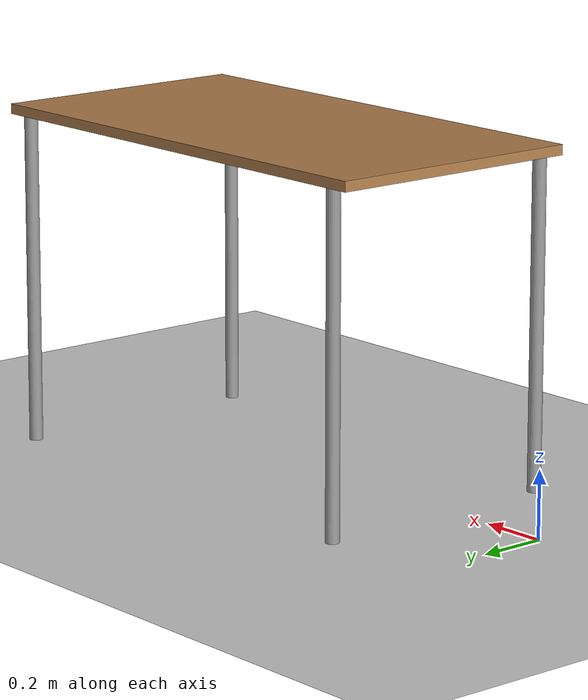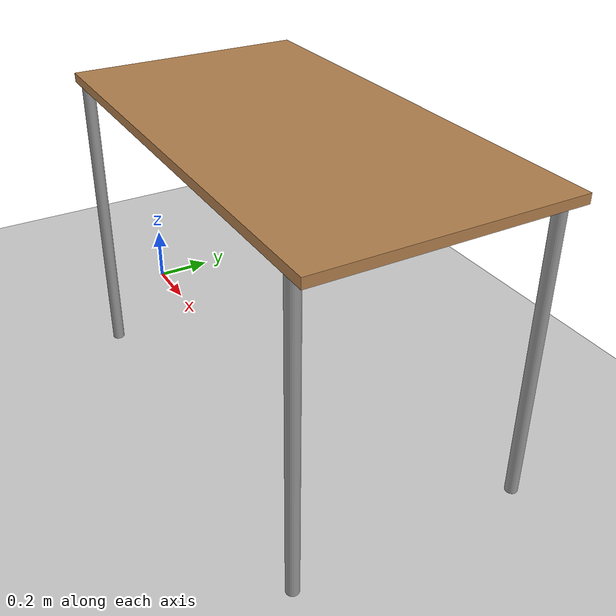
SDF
<sdf version="1.7">
 <world name="default">
  <plugin name="gazebo_ros_paths" filename="libgazebo_ros_paths_plugin.so"/>
  <light name="sun" type="directional">
   <pose>0 0 10 0 0 0</pose>
   <diffuse>0.8 0.8 0.8 1</diffuse>
   <specular>0.2 0.2 0.2 1</specular>
   <direction>-0.5 0.1 -0.9</direction>
  </light>
  <gravity>0 0 0</gravity>
  <physics type="ode">
   <max_step_size>0.001</max_step_size>
   <real_time_factor>1</real_time_factor>
   <real_time_update_rate>1000</real_time_update_rate>
  </physics>
  <include><uri>model://ground_plane</uri></include>
  <model name="table">
   <static>1</static>
   <link name="link">
    <collision name="surface_collision">
     <pose>0 0 1 0 0 0</pose>
     <geometry><box><size>1.5 0.8 0.03</size></box></geometry>
    </collision>
    <visual name="surface_visual">
     <pose>0 0 1 0 0 0</pose>
     <geometry><box><size>1.5 0.8 0.03</size></box></geometry>
     <material>
      <script><uri>file://media/materials/scripts/gazebo.material</uri><name>Gazebo/Wood</name></script>
     </material>
    </visual>
    <collision name="front_left_leg_collision">
     <pose>0.68 0.38 0.5 0 0 0</pose>
     <geometry><cylinder><radius>0.02</radius><length>1</length></cylinder></geometry>
    </collision>
    <visual name="front_left_leg_visual">
     <pose>0.68 0.38 0.5 0 0 0</pose>
     <geometry><cylinder><radius>0.02</radius><length>1</length></cylinder></geometry>
     <material>
      <script><uri>file://media/materials/scripts/gazebo.material</uri><name>Gazebo/Grey</name></script>
     </material>
    </visual>
    <collision name="front_right_leg_collision">
     <pose>0.68 -0.38 0.5 0 0 0</pose>
     <geometry><cylinder><radius>0.02</radius><length>1</length></cylinder></geometry>
    </collision>
    <visual name="front_right_leg_visual">
     <pose>0.68 -0.38 0.5 0 0 0</pose>
     <geometry><cylinder><radius>0.02</radius><length>1</length></cylinder></geometry>
     <material>
      <script><uri>file://media/materials/scripts/gazebo.material</uri><name>Gazebo/Grey</name></script>
     </material>
    </visual>
    <collision name="back_right_leg_collision">
     <pose>-0.68 -0.38 0.5 0 0 0</pose>
     <geometry><cylinder><radius>0.02</radius><length>1</length></cylinder></geometry>
    </collision>
    <visual name="back_right_leg_visual">
     <pose>-0.68 -0.38 0.5 0 0 0</pose>
     <geometry><cylinder><radius>0.02</radius><length>1</length></cylinder></geometry>
     <material>
      <script><uri>file://media/materials/scripts/gazebo.material</uri><name>Gazebo/Grey</name></script>
     </material>
    </visual>
    <collision name="back_left_leg_collision">
     <pose>-0.68 0.38 0.5 0 0 0</pose>
     <geometry><cylinder><radius>0.02</radius><length>1</length></cylinder></geometry>
    </collision>
    <visual name="back_left_leg_visual">
     <pose>-0.68 0.38 0.5 0 0 0</pose>
     <geometry><cylinder><radius>0.02</radius><length>1</length></cylinder></geometry>
     <material>
      <script><uri>file://media/materials/scripts/gazebo.material</uri><name>Gazebo/Grey</name></script>
     </material>
    </visual>
   </link>
   <pose>1.03 0.06 0 0 0 0</pose>
  </model>
  <plugin name="gazebo_link_attacher" filename="libgazebo_link_attacher.so"/>
 </world>
</sdf>
